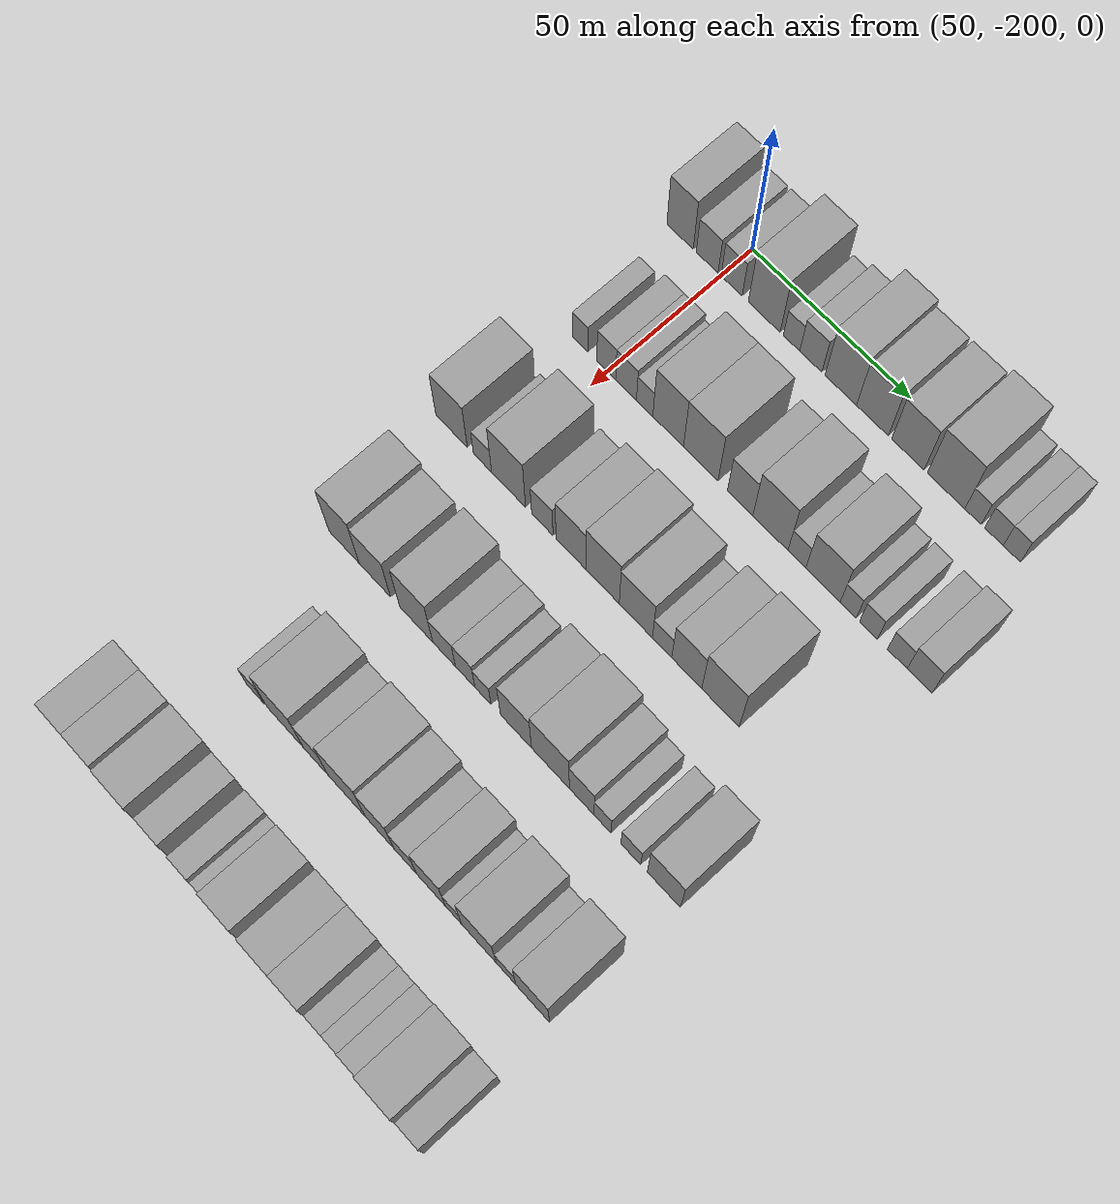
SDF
<sdf version="1.6">
 <world name="default">
  <model name="building_30">
   <static>1</static>
   <pose>50.0000 -213.6260 0 0.000000 0.000000 0.000000</pose>
   <link name="link">
    <pose>0 0 10.50 0 0 0</pose>
    <collision name="collision"><geometry><box><size>20.0000 8.7103 21.0000</size></box></geometry></collision>
    <visual name="visual">
     <cast_shadows>0</cast_shadows>
     <geometry><box><size>20.0000 8.7103 21.0000</size></box></geometry>
     <material>
      <script>
       <uri>model://grey_wall/materials/scripts</uri>
       <uri>model://grey_wall/materials/textures</uri>
       <name>vrc/grey_wall</name>
      </script>
     </material>
    </visual>
   </link>
  </model>
  <model name="building_31">
   <static>1</static>
   <pose>50.0000 -204.6919 0 0.000000 0.000000 0.000000</pose>
   <link name="link">
    <pose>0 0 7.50 0 0 0</pose>
    <collision name="collision"><geometry><box><size>20.0000 7.1578 15.0000</size></box></geometry></collision>
    <visual name="visual">
     <cast_shadows>0</cast_shadows>
     <geometry><box><size>20.0000 7.1578 15.0000</size></box></geometry>
     <material>
      <script>
       <uri>model://grey_wall/materials/scripts</uri>
       <uri>model://grey_wall/materials/textures</uri>
       <name>vrc/grey_wall</name>
      </script>
     </material>
    </visual>
   </link>
  </model>
  <model name="building_32">
   <static>1</static>
   <pose>50.0000 -196.6961 0 0.000000 0.000000 0.000000</pose>
   <link name="link">
    <pose>0 0 7.50 0 0 0</pose>
    <collision name="collision"><geometry><box><size>20.0000 6.8339 15.0000</size></box></geometry></collision>
    <visual name="visual">
     <cast_shadows>0</cast_shadows>
     <geometry><box><size>20.0000 6.8339 15.0000</size></box></geometry>
     <material>
      <script>
       <uri>model://grey_wall/materials/scripts</uri>
       <uri>model://grey_wall/materials/textures</uri>
       <name>vrc/grey_wall</name>
      </script>
     </material>
    </visual>
   </link>
  </model>
  <model name="building_33">
   <static>1</static>
   <pose>50.0000 -186.1568 0 0.000000 0.000000 0.000000</pose>
   <link name="link">
    <pose>0 0 12.00 0 0 0</pose>
    <collision name="collision"><geometry><box><size>20.0000 10.2447 24.0000</size></box></geometry></collision>
    <visual name="visual">
     <cast_shadows>0</cast_shadows>
     <geometry><box><size>20.0000 10.2447 24.0000</size></box></geometry>
     <material>
      <script>
       <uri>model://grey_wall/materials/scripts</uri>
       <uri>model://grey_wall/materials/textures</uri>
       <name>vrc/grey_wall</name>
      </script>
     </material>
    </visual>
   </link>
  </model>
  <model name="building_34">
   <static>1</static>
   <pose>50.0000 -177.4231 0 0.000000 0.000000 0.000000</pose>
   <link name="link">
    <pose>0 0 6.00 0 0 0</pose>
    <collision name="collision"><geometry><box><size>20.0000 5.2226 12.0000</size></box></geometry></collision>
    <visual name="visual">
     <cast_shadows>0</cast_shadows>
     <geometry><box><size>20.0000 5.2226 12.0000</size></box></geometry>
     <material>
      <script>
       <uri>model://grey_wall/materials/scripts</uri>
       <uri>model://grey_wall/materials/textures</uri>
       <name>vrc/grey_wall</name>
      </script>
     </material>
    </visual>
   </link>
  </model>
  <model name="building_35">
   <static>1</static>
   <pose>50.0000 -171.3070 0 0.000000 0.000000 0.000000</pose>
   <link name="link">
    <pose>0 0 7.50 0 0 0</pose>
    <collision name="collision"><geometry><box><size>20.0000 7.0096 15.0000</size></box></geometry></collision>
    <visual name="visual">
     <cast_shadows>0</cast_shadows>
     <geometry><box><size>20.0000 7.0096 15.0000</size></box></geometry>
     <material>
      <script>
       <uri>model://grey_wall/materials/scripts</uri>
       <uri>model://grey_wall/materials/textures</uri>
       <name>vrc/grey_wall</name>
      </script>
     </material>
    </visual>
   </link>
  </model>
  <model name="building_36">
   <static>1</static>
   <pose>50.0000 -161.8461 0 0.000000 0.000000 0.000000</pose>
   <link name="link">
    <pose>0 0 12.00 0 0 0</pose>
    <collision name="collision"><geometry><box><size>20.0000 9.9123 24.0000</size></box></geometry></collision>
    <visual name="visual">
     <cast_shadows>0</cast_shadows>
     <geometry><box><size>20.0000 9.9123 24.0000</size></box></geometry>
     <material>
      <script>
       <uri>model://grey_wall/materials/scripts</uri>
       <uri>model://grey_wall/materials/textures</uri>
       <name>vrc/grey_wall</name>
      </script>
     </material>
    </visual>
   </link>
  </model>
  <model name="building_37">
   <static>1</static>
   <pose>50.0000 -151.9601 0 0.000000 0.000000 0.000000</pose>
   <link name="link">
    <pose>0 0 10.50 0 0 0</pose>
    <collision name="collision"><geometry><box><size>20.0000 9.8596 21.0000</size></box></geometry></collision>
    <visual name="visual">
     <cast_shadows>0</cast_shadows>
     <geometry><box><size>20.0000 9.8596 21.0000</size></box></geometry>
     <material>
      <script>
       <uri>model://grey_wall/materials/scripts</uri>
       <uri>model://grey_wall/materials/textures</uri>
       <name>vrc/grey_wall</name>
      </script>
     </material>
    </visual>
   </link>
  </model>
  <model name="building_38">
   <static>1</static>
   <pose>50.0000 -141.0525 0 0.000000 0.000000 0.000000</pose>
   <link name="link">
    <pose>0 0 10.50 0 0 0</pose>
    <collision name="collision"><geometry><box><size>20.0000 9.9556 21.0000</size></box></geometry></collision>
    <visual name="visual">
     <cast_shadows>0</cast_shadows>
     <geometry><box><size>20.0000 9.9556 21.0000</size></box></geometry>
     <material>
      <script>
       <uri>model://grey_wall/materials/scripts</uri>
       <uri>model://grey_wall/materials/textures</uri>
       <name>vrc/grey_wall</name>
      </script>
     </material>
    </visual>
   </link>
  </model>
  <model name="building_39">
   <static>1</static>
   <pose>50.0000 -129.4101 0 0.000000 0.000000 0.000000</pose>
   <link name="link">
    <pose>0 0 12.00 0 0 0</pose>
    <collision name="collision"><geometry><box><size>20.0000 11.3293 24.0000</size></box></geometry></collision>
    <visual name="visual">
     <cast_shadows>0</cast_shadows>
     <geometry><box><size>20.0000 11.3293 24.0000</size></box></geometry>
     <material>
      <script>
       <uri>model://grey_wall/materials/scripts</uri>
       <uri>model://grey_wall/materials/textures</uri>
       <name>vrc/grey_wall</name>
      </script>
     </material>
    </visual>
   </link>
  </model>
  <model name="building_40">
   <static>1</static>
   <pose>50.0000 -121.2722 0 0.000000 0.000000 0.000000</pose>
   <link name="link">
    <pose>0 0 6.00 0 0 0</pose>
    <collision name="collision"><geometry><box><size>20.0000 4.9465 12.0000</size></box></geometry></collision>
    <visual name="visual">
     <cast_shadows>0</cast_shadows>
     <geometry><box><size>20.0000 4.9465 12.0000</size></box></geometry>
     <material>
      <script>
       <uri>model://grey_wall/materials/scripts</uri>
       <uri>model://grey_wall/materials/textures</uri>
       <name>vrc/grey_wall</name>
      </script>
     </material>
    </visual>
   </link>
  </model>
  <model name="building_41">
   <static>1</static>
   <pose>50.0000 -115.0276 0 0.000000 0.000000 0.000000</pose>
   <link name="link">
    <pose>0 0 6.00 0 0 0</pose>
    <collision name="collision"><geometry><box><size>20.0000 5.5428 12.0000</size></box></geometry></collision>
    <visual name="visual">
     <cast_shadows>0</cast_shadows>
     <geometry><box><size>20.0000 5.5428 12.0000</size></box></geometry>
     <material>
      <script>
       <uri>model://grey_wall/materials/scripts</uri>
       <uri>model://grey_wall/materials/textures</uri>
       <name>vrc/grey_wall</name>
      </script>
     </material>
    </visual>
   </link>
  </model>
  <model name="building_42">
   <static>1</static>
   <pose>50.0000 -109.7091 0 0.000000 0.000000 0.000000</pose>
   <link name="link">
    <pose>0 0 6.00 0 0 0</pose>
    <collision name="collision"><geometry><box><size>20.0000 5.0941 12.0000</size></box></geometry></collision>
    <visual name="visual">
     <cast_shadows>0</cast_shadows>
     <geometry><box><size>20.0000 5.0941 12.0000</size></box></geometry>
     <material>
      <script>
       <uri>model://grey_wall/materials/scripts</uri>
       <uri>model://grey_wall/materials/textures</uri>
       <name>vrc/grey_wall</name>
      </script>
     </material>
    </visual>
   </link>
  </model>
  <model name="building_154">
   <static>1</static>
   <pose>85.0000 -209.1103 0 0.000000 0.000000 0.000000</pose>
   <link name="link">
    <pose>0 0 6.00 0 0 0</pose>
    <collision name="collision"><geometry><box><size>20.0000 5.0857 12.0000</size></box></geometry></collision>
    <visual name="visual">
     <cast_shadows>0</cast_shadows>
     <geometry><box><size>20.0000 5.0857 12.0000</size></box></geometry>
     <material>
      <script>
       <uri>model://grey_wall/materials/scripts</uri>
       <uri>model://grey_wall/materials/textures</uri>
       <name>vrc/grey_wall</name>
      </script>
     </material>
    </visual>
   </link>
  </model>
  <model name="building_155">
   <static>1</static>
   <pose>85.0000 -200.5043 0 0.000000 0.000000 0.000000</pose>
   <link name="link">
    <pose>0 0 7.50 0 0 0</pose>
    <collision name="collision"><geometry><box><size>20.0000 6.1261 15.0000</size></box></geometry></collision>
    <visual name="visual">
     <cast_shadows>0</cast_shadows>
     <geometry><box><size>20.0000 6.1261 15.0000</size></box></geometry>
     <material>
      <script>
       <uri>model://grey_wall/materials/scripts</uri>
       <uri>model://grey_wall/materials/textures</uri>
       <name>vrc/grey_wall</name>
      </script>
     </material>
    </visual>
   </link>
  </model>
  <model name="building_156">
   <static>1</static>
   <pose>85.0000 -194.0651 0 0.000000 0.000000 0.000000</pose>
   <link name="link">
    <pose>0 0 7.50 0 0 0</pose>
    <collision name="collision"><geometry><box><size>20.0000 6.7524 15.0000</size></box></geometry></collision>
    <visual name="visual">
     <cast_shadows>0</cast_shadows>
     <geometry><box><size>20.0000 6.7524 15.0000</size></box></geometry>
     <material>
      <script>
       <uri>model://grey_wall/materials/scripts</uri>
       <uri>model://grey_wall/materials/textures</uri>
       <name>vrc/grey_wall</name>
      </script>
     </material>
    </visual>
   </link>
  </model>
  <model name="building_157">
   <static>1</static>
   <pose>85.0000 -188.0423 0 0.000000 0.000000 0.000000</pose>
   <link name="link">
    <pose>0 0 6.00 0 0 0</pose>
    <collision name="collision"><geometry><box><size>20.0000 5.2932 12.0000</size></box></geometry></collision>
    <visual name="visual">
     <cast_shadows>0</cast_shadows>
     <geometry><box><size>20.0000 5.2932 12.0000</size></box></geometry>
     <material>
      <script>
       <uri>model://grey_wall/materials/scripts</uri>
       <uri>model://grey_wall/materials/textures</uri>
       <name>vrc/grey_wall</name>
      </script>
     </material>
    </visual>
   </link>
  </model>
  <model name="building_158">
   <static>1</static>
   <pose>85.0000 -180.4896 0 0.000000 0.000000 0.000000</pose>
   <link name="link">
    <pose>0 0 12.00 0 0 0</pose>
    <collision name="collision"><geometry><box><size>20.0000 9.8120 24.0000</size></box></geometry></collision>
    <visual name="visual">
     <cast_shadows>0</cast_shadows>
     <geometry><box><size>20.0000 9.8120 24.0000</size></box></geometry>
     <material>
      <script>
       <uri>model://grey_wall/materials/scripts</uri>
       <uri>model://grey_wall/materials/textures</uri>
       <name>vrc/grey_wall</name>
      </script>
     </material>
    </visual>
   </link>
  </model>
  <model name="building_159">
   <static>1</static>
   <pose>85.0000 -170.1032 0 0.000000 0.000000 0.000000</pose>
   <link name="link">
    <pose>0 0 12.00 0 0 0</pose>
    <collision name="collision"><geometry><box><size>20.0000 10.9610 24.0000</size></box></geometry></collision>
    <visual name="visual">
     <cast_shadows>0</cast_shadows>
     <geometry><box><size>20.0000 10.9610 24.0000</size></box></geometry>
     <material>
      <script>
       <uri>model://grey_wall/materials/scripts</uri>
       <uri>model://grey_wall/materials/textures</uri>
       <name>vrc/grey_wall</name>
      </script>
     </material>
    </visual>
   </link>
  </model>
  <model name="building_160">
   <static>1</static>
   <pose>85.0000 -157.6683 0 0.000000 0.000000 0.000000</pose>
   <link name="link">
    <pose>0 0 9.00 0 0 0</pose>
    <collision name="collision"><geometry><box><size>20.0000 7.9087 18.0000</size></box></geometry></collision>
    <visual name="visual">
     <cast_shadows>0</cast_shadows>
     <geometry><box><size>20.0000 7.9087 18.0000</size></box></geometry>
     <material>
      <script>
       <uri>model://grey_wall/materials/scripts</uri>
       <uri>model://grey_wall/materials/textures</uri>
       <name>vrc/grey_wall</name>
      </script>
     </material>
    </visual>
   </link>
  </model>
  <model name="building_161">
   <static>1</static>
   <pose>85.0000 -148.2794 0 0.000000 0.000000 0.000000</pose>
   <link name="link">
    <pose>0 0 12.00 0 0 0</pose>
    <collision name="collision"><geometry><box><size>20.0000 10.8690 24.0000</size></box></geometry></collision>
    <visual name="visual">
     <cast_shadows>0</cast_shadows>
     <geometry><box><size>20.0000 10.8690 24.0000</size></box></geometry>
     <material>
      <script>
       <uri>model://grey_wall/materials/scripts</uri>
       <uri>model://grey_wall/materials/textures</uri>
       <name>vrc/grey_wall</name>
      </script>
     </material>
    </visual>
   </link>
  </model>
  <model name="building_162">
   <static>1</static>
   <pose>85.0000 -140.1025 0 0.000000 0.000000 0.000000</pose>
   <link name="link">
    <pose>0 0 6.00 0 0 0</pose>
    <collision name="collision"><geometry><box><size>20.0000 5.4848 12.0000</size></box></geometry></collision>
    <visual name="visual">
     <cast_shadows>0</cast_shadows>
     <geometry><box><size>20.0000 5.4848 12.0000</size></box></geometry>
     <material>
      <script>
       <uri>model://grey_wall/materials/scripts</uri>
       <uri>model://grey_wall/materials/textures</uri>
       <name>vrc/grey_wall</name>
      </script>
     </material>
    </visual>
   </link>
  </model>
  <model name="building_163">
   <static>1</static>
   <pose>85.0000 -132.1316 0 0.000000 0.000000 0.000000</pose>
   <link name="link">
    <pose>0 0 10.50 0 0 0</pose>
    <collision name="collision"><geometry><box><size>20.0000 10.4571 21.0000</size></box></geometry></collision>
    <visual name="visual">
     <cast_shadows>0</cast_shadows>
     <geometry><box><size>20.0000 10.4571 21.0000</size></box></geometry>
     <material>
      <script>
       <uri>model://grey_wall/materials/scripts</uri>
       <uri>model://grey_wall/materials/textures</uri>
       <name>vrc/grey_wall</name>
      </script>
     </material>
    </visual>
   </link>
  </model>
  <model name="building_164">
   <static>1</static>
   <pose>85.0000 -124.4841 0 0.000000 0.000000 0.000000</pose>
   <link name="link">
    <pose>0 0 6.00 0 0 0</pose>
    <collision name="collision"><geometry><box><size>20.0000 4.8378 12.0000</size></box></geometry></collision>
    <visual name="visual">
     <cast_shadows>0</cast_shadows>
     <geometry><box><size>20.0000 4.8378 12.0000</size></box></geometry>
     <material>
      <script>
       <uri>model://grey_wall/materials/scripts</uri>
       <uri>model://grey_wall/materials/textures</uri>
       <name>vrc/grey_wall</name>
      </script>
     </material>
    </visual>
   </link>
  </model>
  <model name="building_165">
   <static>1</static>
   <pose>85.0000 -118.3863 0 0.000000 0.000000 0.000000</pose>
   <link name="link">
    <pose>0 0 6.00 0 0 0</pose>
    <collision name="collision"><geometry><box><size>20.0000 5.3579 12.0000</size></box></geometry></collision>
    <visual name="visual">
     <cast_shadows>0</cast_shadows>
     <geometry><box><size>20.0000 5.3579 12.0000</size></box></geometry>
     <material>
      <script>
       <uri>model://grey_wall/materials/scripts</uri>
       <uri>model://grey_wall/materials/textures</uri>
       <name>vrc/grey_wall</name>
      </script>
     </material>
    </visual>
   </link>
  </model>
  <model name="building_166">
   <static>1</static>
   <pose>85.0000 -109.7825 0 0.000000 0.000000 0.000000</pose>
   <link name="link">
    <pose>0 0 6.00 0 0 0</pose>
    <collision name="collision"><geometry><box><size>20.0000 5.8497 12.0000</size></box></geometry></collision>
    <visual name="visual">
     <cast_shadows>0</cast_shadows>
     <geometry><box><size>20.0000 5.8497 12.0000</size></box></geometry>
     <material>
      <script>
       <uri>model://grey_wall/materials/scripts</uri>
       <uri>model://grey_wall/materials/textures</uri>
       <name>vrc/grey_wall</name>
      </script>
     </material>
    </visual>
   </link>
  </model>
  <model name="building_167">
   <static>1</static>
   <pose>85.0000 -103.2186 0 0.000000 0.000000 0.000000</pose>
   <link name="link">
    <pose>0 0 7.50 0 0 0</pose>
    <collision name="collision"><geometry><box><size>20.0000 7.2781 15.0000</size></box></geometry></collision>
    <visual name="visual">
     <cast_shadows>0</cast_shadows>
     <geometry><box><size>20.0000 7.2781 15.0000</size></box></geometry>
     <material>
      <script>
       <uri>model://grey_wall/materials/scripts</uri>
       <uri>model://grey_wall/materials/textures</uri>
       <name>vrc/grey_wall</name>
      </script>
     </material>
    </visual>
   </link>
  </model>
  <model name="building_283">
   <static>1</static>
   <pose>120.0000 -212.7226 0 0.000000 0.000000 0.000000</pose>
   <link name="link">
    <pose>0 0 10.50 0 0 0</pose>
    <collision name="collision"><geometry><box><size>20.0000 10.4516 21.0000</size></box></geometry></collision>
    <visual name="visual">
     <cast_shadows>0</cast_shadows>
     <geometry><box><size>20.0000 10.4516 21.0000</size></box></geometry>
     <material>
      <script>
       <uri>model://grey_wall/materials/scripts</uri>
       <uri>model://grey_wall/materials/textures</uri>
       <name>vrc/grey_wall</name>
      </script>
     </material>
    </visual>
   </link>
  </model>
  <model name="building_284">
   <static>1</static>
   <pose>120.0000 -202.5044 0 0.000000 0.000000 0.000000</pose>
   <link name="link">
    <pose>0 0 6.00 0 0 0</pose>
    <collision name="collision"><geometry><box><size>20.0000 5.9849 12.0000</size></box></geometry></collision>
    <visual name="visual">
     <cast_shadows>0</cast_shadows>
     <geometry><box><size>20.0000 5.9849 12.0000</size></box></geometry>
     <material>
      <script>
       <uri>model://grey_wall/materials/scripts</uri>
       <uri>model://grey_wall/materials/textures</uri>
       <name>vrc/grey_wall</name>
      </script>
     </material>
    </visual>
   </link>
  </model>
  <model name="building_285">
   <static>1</static>
   <pose>120.0000 -193.9816 0 0.000000 0.000000 0.000000</pose>
   <link name="link">
    <pose>0 0 12.00 0 0 0</pose>
    <collision name="collision"><geometry><box><size>20.0000 11.0606 24.0000</size></box></geometry></collision>
    <visual name="visual">
     <cast_shadows>0</cast_shadows>
     <geometry><box><size>20.0000 11.0606 24.0000</size></box></geometry>
     <material>
      <script>
       <uri>model://grey_wall/materials/scripts</uri>
       <uri>model://grey_wall/materials/textures</uri>
       <name>vrc/grey_wall</name>
      </script>
     </material>
    </visual>
   </link>
  </model>
  <model name="building_286">
   <static>1</static>
   <pose>120.0000 -183.0088 0 0.000000 0.000000 0.000000</pose>
   <link name="link">
    <pose>0 0 7.50 0 0 0</pose>
    <collision name="collision"><geometry><box><size>20.0000 6.8851 15.0000</size></box></geometry></collision>
    <visual name="visual">
     <cast_shadows>0</cast_shadows>
     <geometry><box><size>20.0000 6.8851 15.0000</size></box></geometry>
     <material>
      <script>
       <uri>model://grey_wall/materials/scripts</uri>
       <uri>model://grey_wall/materials/textures</uri>
       <name>vrc/grey_wall</name>
      </script>
     </material>
    </visual>
   </link>
  </model>
  <model name="building_287">
   <static>1</static>
   <pose>120.0000 -173.8642 0 0.000000 0.000000 0.000000</pose>
   <link name="link">
    <pose>0 0 10.50 0 0 0</pose>
    <collision name="collision"><geometry><box><size>20.0000 9.4040 21.0000</size></box></geometry></collision>
    <visual name="visual">
     <cast_shadows>0</cast_shadows>
     <geometry><box><size>20.0000 9.4040 21.0000</size></box></geometry>
     <material>
      <script>
       <uri>model://grey_wall/materials/scripts</uri>
       <uri>model://grey_wall/materials/textures</uri>
       <name>vrc/grey_wall</name>
      </script>
     </material>
    </visual>
   </link>
  </model>
  <model name="building_288">
   <static>1</static>
   <pose>120.0000 -163.8618 0 0.000000 0.000000 0.000000</pose>
   <link name="link">
    <pose>0 0 12.00 0 0 0</pose>
    <collision name="collision"><geometry><box><size>20.0000 10.6009 24.0000</size></box></geometry></collision>
    <visual name="visual">
     <cast_shadows>0</cast_shadows>
     <geometry><box><size>20.0000 10.6009 24.0000</size></box></geometry>
     <material>
      <script>
       <uri>model://grey_wall/materials/scripts</uri>
       <uri>model://grey_wall/materials/textures</uri>
       <name>vrc/grey_wall</name>
      </script>
     </material>
    </visual>
   </link>
  </model>
  <model name="building_289">
   <static>1</static>
   <pose>120.0000 -153.3975 0 0.000000 0.000000 0.000000</pose>
   <link name="link">
    <pose>0 0 10.50 0 0 0</pose>
    <collision name="collision"><geometry><box><size>20.0000 10.3276 21.0000</size></box></geometry></collision>
    <visual name="visual">
     <cast_shadows>0</cast_shadows>
     <geometry><box><size>20.0000 10.3276 21.0000</size></box></geometry>
     <material>
      <script>
       <uri>model://grey_wall/materials/scripts</uri>
       <uri>model://grey_wall/materials/textures</uri>
       <name>vrc/grey_wall</name>
      </script>
     </material>
    </visual>
   </link>
  </model>
  <model name="building_290">
   <static>1</static>
   <pose>120.0000 -145.2440 0 0.000000 0.000000 0.000000</pose>
   <link name="link">
    <pose>0 0 6.00 0 0 0</pose>
    <collision name="collision"><geometry><box><size>20.0000 5.9795 12.0000</size></box></geometry></collision>
    <visual name="visual">
     <cast_shadows>0</cast_shadows>
     <geometry><box><size>20.0000 5.9795 12.0000</size></box></geometry>
     <material>
      <script>
       <uri>model://grey_wall/materials/scripts</uri>
       <uri>model://grey_wall/materials/textures</uri>
       <name>vrc/grey_wall</name>
      </script>
     </material>
    </visual>
   </link>
  </model>
  <model name="building_291">
   <static>1</static>
   <pose>120.0000 -137.6559 0 0.000000 0.000000 0.000000</pose>
   <link name="link">
    <pose>0 0 10.50 0 0 0</pose>
    <collision name="collision"><geometry><box><size>20.0000 9.1968 21.0000</size></box></geometry></collision>
    <visual name="visual">
     <cast_shadows>0</cast_shadows>
     <geometry><box><size>20.0000 9.1968 21.0000</size></box></geometry>
     <material>
      <script>
       <uri>model://grey_wall/materials/scripts</uri>
       <uri>model://grey_wall/materials/textures</uri>
       <name>vrc/grey_wall</name>
      </script>
     </material>
    </visual>
   </link>
  </model>
  <model name="building_292">
   <static>1</static>
   <pose>120.0000 -127.3863 0 0.000000 0.000000 0.000000</pose>
   <link name="link">
    <pose>0 0 12.00 0 0 0</pose>
    <collision name="collision"><geometry><box><size>20.0000 11.3425 24.0000</size></box></geometry></collision>
    <visual name="visual">
     <cast_shadows>0</cast_shadows>
     <geometry><box><size>20.0000 11.3425 24.0000</size></box></geometry>
     <material>
      <script>
       <uri>model://grey_wall/materials/scripts</uri>
       <uri>model://grey_wall/materials/textures</uri>
       <name>vrc/grey_wall</name>
      </script>
     </material>
    </visual>
   </link>
  </model>
  <model name="building_403">
   <static>1</static>
   <pose>155.0000 -207.9523 0 0.000000 0.000000 0.000000</pose>
   <link name="link">
    <pose>0 0 12.00 0 0 0</pose>
    <collision name="collision"><geometry><box><size>20.0000 10.0691 24.0000</size></box></geometry></collision>
    <visual name="visual">
     <cast_shadows>0</cast_shadows>
     <geometry><box><size>20.0000 10.0691 24.0000</size></box></geometry>
     <material>
      <script>
       <uri>model://grey_wall/materials/scripts</uri>
       <uri>model://grey_wall/materials/textures</uri>
       <name>vrc/grey_wall</name>
      </script>
     </material>
    </visual>
   </link>
  </model>
  <model name="building_404">
   <static>1</static>
   <pose>155.0000 -197.7935 0 0.000000 0.000000 0.000000</pose>
   <link name="link">
    <pose>0 0 10.50 0 0 0</pose>
    <collision name="collision"><geometry><box><size>20.0000 10.2485 21.0000</size></box></geometry></collision>
    <visual name="visual">
     <cast_shadows>0</cast_shadows>
     <geometry><box><size>20.0000 10.2485 21.0000</size></box></geometry>
     <material>
      <script>
       <uri>model://grey_wall/materials/scripts</uri>
       <uri>model://grey_wall/materials/textures</uri>
       <name>vrc/grey_wall</name>
      </script>
     </material>
    </visual>
   </link>
  </model>
  <model name="building_405">
   <static>1</static>
   <pose>155.0000 -184.3172 0 0.000000 0.000000 0.000000</pose>
   <link name="link">
    <pose>0 0 12.00 0 0 0</pose>
    <collision name="collision"><geometry><box><size>20.0000 10.7041 24.0000</size></box></geometry></collision>
    <visual name="visual">
     <cast_shadows>0</cast_shadows>
     <geometry><box><size>20.0000 10.7041 24.0000</size></box></geometry>
     <material>
      <script>
       <uri>model://grey_wall/materials/scripts</uri>
       <uri>model://grey_wall/materials/textures</uri>
       <name>vrc/grey_wall</name>
      </script>
     </material>
    </visual>
   </link>
  </model>
  <model name="building_406">
   <static>1</static>
   <pose>155.0000 -175.3044 0 0.000000 0.000000 0.000000</pose>
   <link name="link">
    <pose>0 0 7.50 0 0 0</pose>
    <collision name="collision"><geometry><box><size>20.0000 7.3215 15.0000</size></box></geometry></collision>
    <visual name="visual">
     <cast_shadows>0</cast_shadows>
     <geometry><box><size>20.0000 7.3215 15.0000</size></box></geometry>
     <material>
      <script>
       <uri>model://grey_wall/materials/scripts</uri>
       <uri>model://grey_wall/materials/textures</uri>
       <name>vrc/grey_wall</name>
      </script>
     </material>
    </visual>
   </link>
  </model>
  <model name="building_407">
   <static>1</static>
   <pose>155.0000 -168.5745 0 0.000000 0.000000 0.000000</pose>
   <link name="link">
    <pose>0 0 7.50 0 0 0</pose>
    <collision name="collision"><geometry><box><size>20.0000 6.1383 15.0000</size></box></geometry></collision>
    <visual name="visual">
     <cast_shadows>0</cast_shadows>
     <geometry><box><size>20.0000 6.1383 15.0000</size></box></geometry>
     <material>
      <script>
       <uri>model://grey_wall/materials/scripts</uri>
       <uri>model://grey_wall/materials/textures</uri>
       <name>vrc/grey_wall</name>
      </script>
     </material>
    </visual>
   </link>
  </model>
  <model name="building_408">
   <static>1</static>
   <pose>155.0000 -162.9601 0 0.000000 0.000000 0.000000</pose>
   <link name="link">
    <pose>0 0 6.00 0 0 0</pose>
    <collision name="collision"><geometry><box><size>20.0000 5.0905 12.0000</size></box></geometry></collision>
    <visual name="visual">
     <cast_shadows>0</cast_shadows>
     <geometry><box><size>20.0000 5.0905 12.0000</size></box></geometry>
     <material>
      <script>
       <uri>model://grey_wall/materials/scripts</uri>
       <uri>model://grey_wall/materials/textures</uri>
       <name>vrc/grey_wall</name>
      </script>
     </material>
    </visual>
   </link>
  </model>
  <model name="building_409">
   <static>1</static>
   <pose>155.0000 -152.5664 0 0.000000 0.000000 0.000000</pose>
   <link name="link">
    <pose>0 0 10.50 0 0 0</pose>
    <collision name="collision"><geometry><box><size>20.0000 9.6969 21.0000</size></box></geometry></collision>
    <visual name="visual">
     <cast_shadows>0</cast_shadows>
     <geometry><box><size>20.0000 9.6969 21.0000</size></box></geometry>
     <material>
      <script>
       <uri>model://grey_wall/materials/scripts</uri>
       <uri>model://grey_wall/materials/textures</uri>
       <name>vrc/grey_wall</name>
      </script>
     </material>
    </visual>
   </link>
  </model>
  <model name="building_410">
   <static>1</static>
   <pose>155.0000 -141.8720 0 0.000000 0.000000 0.000000</pose>
   <link name="link">
    <pose>0 0 12.00 0 0 0</pose>
    <collision name="collision"><geometry><box><size>20.0000 11.6918 24.0000</size></box></geometry></collision>
    <visual name="visual">
     <cast_shadows>0</cast_shadows>
     <geometry><box><size>20.0000 11.6918 24.0000</size></box></geometry>
     <material>
      <script>
       <uri>model://grey_wall/materials/scripts</uri>
       <uri>model://grey_wall/materials/textures</uri>
       <name>vrc/grey_wall</name>
      </script>
     </material>
    </visual>
   </link>
  </model>
  <model name="building_411">
   <static>1</static>
   <pose>155.0000 -132.2666 0 0.000000 0.000000 0.000000</pose>
   <link name="link">
    <pose>0 0 9.00 0 0 0</pose>
    <collision name="collision"><geometry><box><size>20.0000 7.5191 18.0000</size></box></geometry></collision>
    <visual name="visual">
     <cast_shadows>0</cast_shadows>
     <geometry><box><size>20.0000 7.5191 18.0000</size></box></geometry>
     <material>
      <script>
       <uri>model://grey_wall/materials/scripts</uri>
       <uri>model://grey_wall/materials/textures</uri>
       <name>vrc/grey_wall</name>
      </script>
     </material>
    </visual>
   </link>
  </model>
  <model name="building_412">
   <static>1</static>
   <pose>155.0000 -125.9304 0 0.000000 0.000000 0.000000</pose>
   <link name="link">
    <pose>0 0 6.00 0 0 0</pose>
    <collision name="collision"><geometry><box><size>20.0000 5.1533 12.0000</size></box></geometry></collision>
    <visual name="visual">
     <cast_shadows>0</cast_shadows>
     <geometry><box><size>20.0000 5.1533 12.0000</size></box></geometry>
     <material>
      <script>
       <uri>model://grey_wall/materials/scripts</uri>
       <uri>model://grey_wall/materials/textures</uri>
       <name>vrc/grey_wall</name>
      </script>
     </material>
    </visual>
   </link>
  </model>
  <model name="building_413">
   <static>1</static>
   <pose>155.0000 -117.3875 0 0.000000 0.000000 0.000000</pose>
   <link name="link">
    <pose>0 0 6.00 0 0 0</pose>
    <collision name="collision"><geometry><box><size>20.0000 5.9325 12.0000</size></box></geometry></collision>
    <visual name="visual">
     <cast_shadows>0</cast_shadows>
     <geometry><box><size>20.0000 5.9325 12.0000</size></box></geometry>
     <material>
      <script>
       <uri>model://grey_wall/materials/scripts</uri>
       <uri>model://grey_wall/materials/textures</uri>
       <name>vrc/grey_wall</name>
      </script>
     </material>
    </visual>
   </link>
  </model>
  <model name="building_414">
   <static>1</static>
   <pose>155.0000 -107.5310 0 0.000000 0.000000 0.000000</pose>
   <link name="link">
    <pose>0 0 10.50 0 0 0</pose>
    <collision name="collision"><geometry><box><size>20.0000 9.7805 21.0000</size></box></geometry></collision>
    <visual name="visual">
     <cast_shadows>0</cast_shadows>
     <geometry><box><size>20.0000 9.7805 21.0000</size></box></geometry>
     <material>
      <script>
       <uri>model://grey_wall/materials/scripts</uri>
       <uri>model://grey_wall/materials/textures</uri>
       <name>vrc/grey_wall</name>
      </script>
     </material>
    </visual>
   </link>
  </model>
  <model name="building_527">
   <static>1</static>
   <pose>190.0000 -195.4752 0 0.000000 0.000000 0.000000</pose>
   <link name="link">
    <pose>0 0 6.00 0 0 0</pose>
    <collision name="collision"><geometry><box><size>20.0000 5.7323 12.0000</size></box></geometry></collision>
    <visual name="visual">
     <cast_shadows>0</cast_shadows>
     <geometry><box><size>20.0000 5.7323 12.0000</size></box></geometry>
     <material>
      <script>
       <uri>model://grey_wall/materials/scripts</uri>
       <uri>model://grey_wall/materials/textures</uri>
       <name>vrc/grey_wall</name>
      </script>
     </material>
    </visual>
   </link>
  </model>
  <model name="building_528">
   <static>1</static>
   <pose>190.0000 -185.6544 0 0.000000 0.000000 0.000000</pose>
   <link name="link">
    <pose>0 0 12.00 0 0 0</pose>
    <collision name="collision"><geometry><box><size>20.0000 11.9094 24.0000</size></box></geometry></collision>
    <visual name="visual">
     <cast_shadows>0</cast_shadows>
     <geometry><box><size>20.0000 11.9094 24.0000</size></box></geometry>
     <material>
      <script>
       <uri>model://grey_wall/materials/scripts</uri>
       <uri>model://grey_wall/materials/textures</uri>
       <name>vrc/grey_wall</name>
      </script>
     </material>
    </visual>
   </link>
  </model>
  <model name="building_529">
   <static>1</static>
   <pose>190.0000 -175.7960 0 0.000000 0.000000 0.000000</pose>
   <link name="link">
    <pose>0 0 9.00 0 0 0</pose>
    <collision name="collision"><geometry><box><size>20.0000 7.8074 18.0000</size></box></geometry></collision>
    <visual name="visual">
     <cast_shadows>0</cast_shadows>
     <geometry><box><size>20.0000 7.8074 18.0000</size></box></geometry>
     <material>
      <script>
       <uri>model://grey_wall/materials/scripts</uri>
       <uri>model://grey_wall/materials/textures</uri>
       <name>vrc/grey_wall</name>
      </script>
     </material>
    </visual>
   </link>
  </model>
  <model name="building_530">
   <static>1</static>
   <pose>190.0000 -165.9094 0 0.000000 0.000000 0.000000</pose>
   <link name="link">
    <pose>0 0 12.00 0 0 0</pose>
    <collision name="collision"><geometry><box><size>20.0000 11.9658 24.0000</size></box></geometry></collision>
    <visual name="visual">
     <cast_shadows>0</cast_shadows>
     <geometry><box><size>20.0000 11.9658 24.0000</size></box></geometry>
     <material>
      <script>
       <uri>model://grey_wall/materials/scripts</uri>
       <uri>model://grey_wall/materials/textures</uri>
       <name>vrc/grey_wall</name>
      </script>
     </material>
    </visual>
   </link>
  </model>
  <model name="building_531">
   <static>1</static>
   <pose>190.0000 -155.4844 0 0.000000 0.000000 0.000000</pose>
   <link name="link">
    <pose>0 0 10.50 0 0 0</pose>
    <collision name="collision"><geometry><box><size>20.0000 8.8841 21.0000</size></box></geometry></collision>
    <visual name="visual">
     <cast_shadows>0</cast_shadows>
     <geometry><box><size>20.0000 8.8841 21.0000</size></box></geometry>
     <material>
      <script>
       <uri>model://grey_wall/materials/scripts</uri>
       <uri>model://grey_wall/materials/textures</uri>
       <name>vrc/grey_wall</name>
      </script>
     </material>
    </visual>
   </link>
  </model>
  <model name="building_532">
   <static>1</static>
   <pose>190.0000 -147.4283 0 0.000000 0.000000 0.000000</pose>
   <link name="link">
    <pose>0 0 7.50 0 0 0</pose>
    <collision name="collision"><geometry><box><size>20.0000 7.2282 15.0000</size></box></geometry></collision>
    <visual name="visual">
     <cast_shadows>0</cast_shadows>
     <geometry><box><size>20.0000 7.2282 15.0000</size></box></geometry>
     <material>
      <script>
       <uri>model://grey_wall/materials/scripts</uri>
       <uri>model://grey_wall/materials/textures</uri>
       <name>vrc/grey_wall</name>
      </script>
     </material>
    </visual>
   </link>
  </model>
  <model name="building_533">
   <static>1</static>
   <pose>190.0000 -139.3846 0 0.000000 0.000000 0.000000</pose>
   <link name="link">
    <pose>0 0 10.50 0 0 0</pose>
    <collision name="collision"><geometry><box><size>20.0000 8.8592 21.0000</size></box></geometry></collision>
    <visual name="visual">
     <cast_shadows>0</cast_shadows>
     <geometry><box><size>20.0000 8.8592 21.0000</size></box></geometry>
     <material>
      <script>
       <uri>model://grey_wall/materials/scripts</uri>
       <uri>model://grey_wall/materials/textures</uri>
       <name>vrc/grey_wall</name>
      </script>
     </material>
    </visual>
   </link>
  </model>
  <model name="building_534">
   <static>1</static>
   <pose>190.0000 -132.4509 0 0.000000 0.000000 0.000000</pose>
   <link name="link">
    <pose>0 0 6.00 0 0 0</pose>
    <collision name="collision"><geometry><box><size>20.0000 5.0083 12.0000</size></box></geometry></collision>
    <visual name="visual">
     <cast_shadows>0</cast_shadows>
     <geometry><box><size>20.0000 5.0083 12.0000</size></box></geometry>
     <material>
      <script>
       <uri>model://grey_wall/materials/scripts</uri>
       <uri>model://grey_wall/materials/textures</uri>
       <name>vrc/grey_wall</name>
      </script>
     </material>
    </visual>
   </link>
  </model>
  <model name="building_535">
   <static>1</static>
   <pose>190.0000 -124.6827 0 0.000000 0.000000 0.000000</pose>
   <link name="link">
    <pose>0 0 12.00 0 0 0</pose>
    <collision name="collision"><geometry><box><size>20.0000 10.5280 24.0000</size></box></geometry></collision>
    <visual name="visual">
     <cast_shadows>0</cast_shadows>
     <geometry><box><size>20.0000 10.5280 24.0000</size></box></geometry>
     <material>
      <script>
       <uri>model://grey_wall/materials/scripts</uri>
       <uri>model://grey_wall/materials/textures</uri>
       <name>vrc/grey_wall</name>
      </script>
     </material>
    </visual>
   </link>
  </model>
  <model name="building_536">
   <static>1</static>
   <pose>190.0000 -116.4871 0 0.000000 0.000000 0.000000</pose>
   <link name="link">
    <pose>0 0 6.00 0 0 0</pose>
    <collision name="collision"><geometry><box><size>20.0000 5.8632 12.0000</size></box></geometry></collision>
    <visual name="visual">
     <cast_shadows>0</cast_shadows>
     <geometry><box><size>20.0000 5.8632 12.0000</size></box></geometry>
     <material>
      <script>
       <uri>model://grey_wall/materials/scripts</uri>
       <uri>model://grey_wall/materials/textures</uri>
       <name>vrc/grey_wall</name>
      </script>
     </material>
    </visual>
   </link>
  </model>
  <model name="building_537">
   <static>1</static>
   <pose>190.0000 -108.5542 0 0.000000 0.000000 0.000000</pose>
   <link name="link">
    <pose>0 0 12.00 0 0 0</pose>
    <collision name="collision"><geometry><box><size>20.0000 10.0025 24.0000</size></box></geometry></collision>
    <visual name="visual">
     <cast_shadows>0</cast_shadows>
     <geometry><box><size>20.0000 10.0025 24.0000</size></box></geometry>
     <material>
      <script>
       <uri>model://grey_wall/materials/scripts</uri>
       <uri>model://grey_wall/materials/textures</uri>
       <name>vrc/grey_wall</name>
      </script>
     </material>
    </visual>
   </link>
  </model>
  <model name="building_655">
   <static>1</static>
   <pose>225.0000 -213.9282 0 0.000000 0.000000 0.000000</pose>
   <link name="link">
    <pose>0 0 9.00 0 0 0</pose>
    <collision name="collision"><geometry><box><size>20.0000 8.4582 18.0000</size></box></geometry></collision>
    <visual name="visual">
     <cast_shadows>0</cast_shadows>
     <geometry><box><size>20.0000 8.4582 18.0000</size></box></geometry>
     <material>
      <script>
       <uri>model://grey_wall/materials/scripts</uri>
       <uri>model://grey_wall/materials/textures</uri>
       <name>vrc/grey_wall</name>
      </script>
     </material>
    </visual>
   </link>
  </model>
  <model name="building_656">
   <static>1</static>
   <pose>225.0000 -205.2360 0 0.000000 0.000000 0.000000</pose>
   <link name="link">
    <pose>0 0 9.00 0 0 0</pose>
    <collision name="collision"><geometry><box><size>20.0000 8.9261 18.0000</size></box></geometry></collision>
    <visual name="visual">
     <cast_shadows>0</cast_shadows>
     <geometry><box><size>20.0000 8.9261 18.0000</size></box></geometry>
     <material>
      <script>
       <uri>model://grey_wall/materials/scripts</uri>
       <uri>model://grey_wall/materials/textures</uri>
       <name>vrc/grey_wall</name>
      </script>
     </material>
    </visual>
   </link>
  </model>
  <model name="building_657">
   <static>1</static>
   <pose>225.0000 -192.6225 0 0.000000 0.000000 0.000000</pose>
   <link name="link">
    <pose>0 0 12.00 0 0 0</pose>
    <collision name="collision"><geometry><box><size>20.0000 10.3009 24.0000</size></box></geometry></collision>
    <visual name="visual">
     <cast_shadows>0</cast_shadows>
     <geometry><box><size>20.0000 10.3009 24.0000</size></box></geometry>
     <material>
      <script>
       <uri>model://grey_wall/materials/scripts</uri>
       <uri>model://grey_wall/materials/textures</uri>
       <name>vrc/grey_wall</name>
      </script>
     </material>
    </visual>
   </link>
  </model>
  <model name="building_658">
   <static>1</static>
   <pose>225.0000 -183.7502 0 0.000000 0.000000 0.000000</pose>
   <link name="link">
    <pose>0 0 7.50 0 0 0</pose>
    <collision name="collision"><geometry><box><size>20.0000 7.4439 15.0000</size></box></geometry></collision>
    <visual name="visual">
     <cast_shadows>0</cast_shadows>
     <geometry><box><size>20.0000 7.4439 15.0000</size></box></geometry>
     <material>
      <script>
       <uri>model://grey_wall/materials/scripts</uri>
       <uri>model://grey_wall/materials/textures</uri>
       <name>vrc/grey_wall</name>
      </script>
     </material>
    </visual>
   </link>
  </model>
  <model name="building_659">
   <static>1</static>
   <pose>225.0000 -173.9074 0 0.000000 0.000000 0.000000</pose>
   <link name="link">
    <pose>0 0 7.50 0 0 0</pose>
    <collision name="collision"><geometry><box><size>20.0000 6.2417 15.0000</size></box></geometry></collision>
    <visual name="visual">
     <cast_shadows>0</cast_shadows>
     <geometry><box><size>20.0000 6.2417 15.0000</size></box></geometry>
     <material>
      <script>
       <uri>model://grey_wall/materials/scripts</uri>
       <uri>model://grey_wall/materials/textures</uri>
       <name>vrc/grey_wall</name>
      </script>
     </material>
    </visual>
   </link>
  </model>
  <model name="building_660">
   <static>1</static>
   <pose>225.0000 -168.2911 0 0.000000 0.000000 0.000000</pose>
   <link name="link">
    <pose>0 0 6.00 0 0 0</pose>
    <collision name="collision"><geometry><box><size>20.0000 4.9908 12.0000</size></box></geometry></collision>
    <visual name="visual">
     <cast_shadows>0</cast_shadows>
     <geometry><box><size>20.0000 4.9908 12.0000</size></box></geometry>
     <material>
      <script>
       <uri>model://grey_wall/materials/scripts</uri>
       <uri>model://grey_wall/materials/textures</uri>
       <name>vrc/grey_wall</name>
      </script>
     </material>
    </visual>
   </link>
  </model>
  <model name="building_661">
   <static>1</static>
   <pose>225.0000 -160.8840 0 0.000000 0.000000 0.000000</pose>
   <link name="link">
    <pose>0 0 10.50 0 0 0</pose>
    <collision name="collision"><geometry><box><size>20.0000 9.8235 21.0000</size></box></geometry></collision>
    <visual name="visual">
     <cast_shadows>0</cast_shadows>
     <geometry><box><size>20.0000 9.8235 21.0000</size></box></geometry>
     <material>
      <script>
       <uri>model://grey_wall/materials/scripts</uri>
       <uri>model://grey_wall/materials/textures</uri>
       <name>vrc/grey_wall</name>
      </script>
     </material>
    </visual>
   </link>
  </model>
  <model name="building_662">
   <static>1</static>
   <pose>225.0000 -149.2778 0 0.000000 0.000000 0.000000</pose>
   <link name="link">
    <pose>0 0 10.50 0 0 0</pose>
    <collision name="collision"><geometry><box><size>20.0000 9.3889 21.0000</size></box></geometry></collision>
    <visual name="visual">
     <cast_shadows>0</cast_shadows>
     <geometry><box><size>20.0000 9.3889 21.0000</size></box></geometry>
     <material>
      <script>
       <uri>model://grey_wall/materials/scripts</uri>
       <uri>model://grey_wall/materials/textures</uri>
       <name>vrc/grey_wall</name>
      </script>
     </material>
    </visual>
   </link>
  </model>
  <model name="building_663">
   <static>1</static>
   <pose>225.0000 -140.1249 0 0.000000 0.000000 0.000000</pose>
   <link name="link">
    <pose>0 0 10.50 0 0 0</pose>
    <collision name="collision"><geometry><box><size>20.0000 8.9171 21.0000</size></box></geometry></collision>
    <visual name="visual">
     <cast_shadows>0</cast_shadows>
     <geometry><box><size>20.0000 8.9171 21.0000</size></box></geometry>
     <material>
      <script>
       <uri>model://grey_wall/materials/scripts</uri>
       <uri>model://grey_wall/materials/textures</uri>
       <name>vrc/grey_wall</name>
      </script>
     </material>
    </visual>
   </link>
  </model>
  <model name="building_664">
   <static>1</static>
   <pose>225.0000 -133.0942 0 0.000000 0.000000 0.000000</pose>
   <link name="link">
    <pose>0 0 6.00 0 0 0</pose>
    <collision name="collision"><geometry><box><size>20.0000 5.1443 12.0000</size></box></geometry></collision>
    <visual name="visual">
     <cast_shadows>0</cast_shadows>
     <geometry><box><size>20.0000 5.1443 12.0000</size></box></geometry>
     <material>
      <script>
       <uri>model://grey_wall/materials/scripts</uri>
       <uri>model://grey_wall/materials/textures</uri>
       <name>vrc/grey_wall</name>
      </script>
     </material>
    </visual>
   </link>
  </model>
  <model name="building_665">
   <static>1</static>
   <pose>225.0000 -127.9555 0 0.000000 0.000000 0.000000</pose>
   <link name="link">
    <pose>0 0 6.00 0 0 0</pose>
    <collision name="collision"><geometry><box><size>20.0000 5.1332 12.0000</size></box></geometry></collision>
    <visual name="visual">
     <cast_shadows>0</cast_shadows>
     <geometry><box><size>20.0000 5.1332 12.0000</size></box></geometry>
     <material>
      <script>
       <uri>model://grey_wall/materials/scripts</uri>
       <uri>model://grey_wall/materials/textures</uri>
       <name>vrc/grey_wall</name>
      </script>
     </material>
    </visual>
   </link>
  </model>
  <model name="building_666">
   <static>1</static>
   <pose>225.0000 -122.0860 0 0.000000 0.000000 0.000000</pose>
   <link name="link">
    <pose>0 0 7.50 0 0 0</pose>
    <collision name="collision"><geometry><box><size>20.0000 6.6057 15.0000</size></box></geometry></collision>
    <visual name="visual">
     <cast_shadows>0</cast_shadows>
     <geometry><box><size>20.0000 6.6057 15.0000</size></box></geometry>
     <material>
      <script>
       <uri>model://grey_wall/materials/scripts</uri>
       <uri>model://grey_wall/materials/textures</uri>
       <name>vrc/grey_wall</name>
      </script>
     </material>
    </visual>
   </link>
  </model>
  <model name="building_667">
   <static>1</static>
   <pose>225.0000 -113.5287 0 0.000000 0.000000 0.000000</pose>
   <link name="link">
    <pose>0 0 12.00 0 0 0</pose>
    <collision name="collision"><geometry><box><size>20.0000 10.5087 24.0000</size></box></geometry></collision>
    <visual name="visual">
     <cast_shadows>0</cast_shadows>
     <geometry><box><size>20.0000 10.5087 24.0000</size></box></geometry>
     <material>
      <script>
       <uri>model://grey_wall/materials/scripts</uri>
       <uri>model://grey_wall/materials/textures</uri>
       <name>vrc/grey_wall</name>
      </script>
     </material>
    </visual>
   </link>
  </model>
  <model name="building_668">
   <static>1</static>
   <pose>225.0000 -104.9023 0 0.000000 0.000000 0.000000</pose>
   <link name="link">
    <pose>0 0 7.50 0 0 0</pose>
    <collision name="collision"><geometry><box><size>20.0000 6.7442 15.0000</size></box></geometry></collision>
    <visual name="visual">
     <cast_shadows>0</cast_shadows>
     <geometry><box><size>20.0000 6.7442 15.0000</size></box></geometry>
     <material>
      <script>
       <uri>model://grey_wall/materials/scripts</uri>
       <uri>model://grey_wall/materials/textures</uri>
       <name>vrc/grey_wall</name>
      </script>
     </material>
    </visual>
   </link>
  </model>
 </world>
</sdf>
